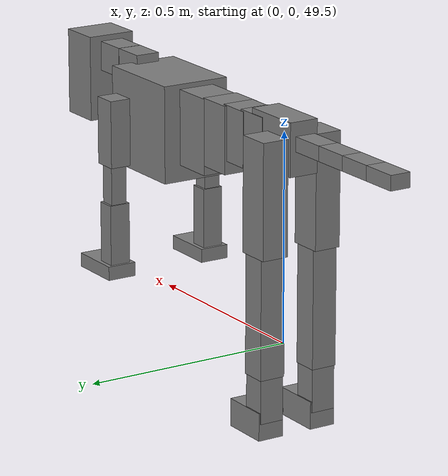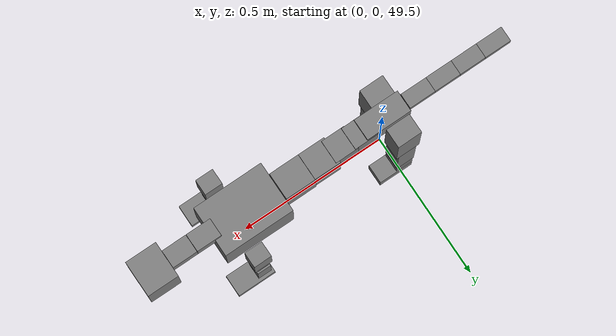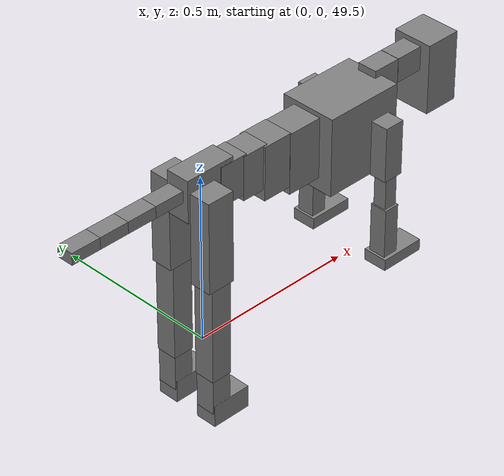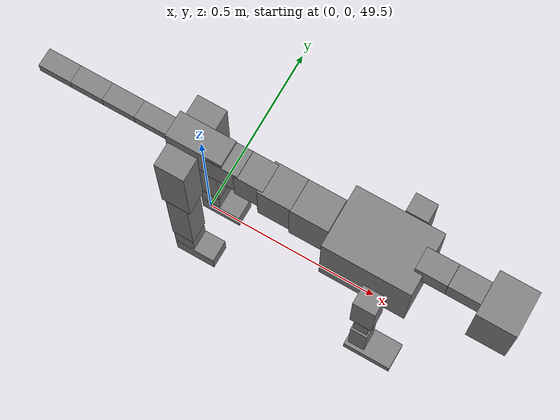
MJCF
<mujoco model="dog">

    <default>
        <joint armature="0.02" stiffness="1" damping="0.2" limited="true"/>
        <geom condim="3" friction="1 0.05 0.05" margin="0.01"/>
        <motor ctrllimited="true" ctrlrange="-1.0 1.0" forcelimited="true" gear="50"/>
    </default>

    <compiler inertiafromgeom="true" angle="radian"/>

    <option timestep="0.016" iterations="50" tolerance="1e-10" solver="Newton" jacobian="dense" cone="pyramidal"/>

    <size nconmax="20000" njmax="60000" nstack="5000000"/>
    <visual>
        <map force="0.1" zfar="30"/>
        <rgba haze="0.15 0.25 0.35 1"/>
        <quality shadowsize="2048"/>
        <global offwidth="800" offheight="800"/>
    </visual>

    <asset>
        <texture type="skybox" builtin="gradient" rgb1="0.3 0.5 0.7" rgb2="0 0 0" width="512" height="512"/>
        <texture name="texplane" type="2d" builtin="checker" rgb1=".2 .3 .4" rgb2=".1 0.15 0.2" width="512" height="512"
                 mark="cross" markrgb=".8 .8 .8"/>
        <texture name="texgeom" type="cube" builtin="flat" mark="cross" width="127" height="1278" rgb1="0.8 0.6 0.4"
                 rgb2="0.8 0.6 0.4" markrgb="1 1 1" random="0.01"/>

        <material name="matplane" reflectance="0.3" texture="texplane" texrepeat="1 1" texuniform="true"/>
        <material name="matgeom" texture="texgeom" texuniform="true" rgba="0.8 0.6 .4 1"/>
    </asset>

    <worldbody>
        <geom name="floor" pos="0 0 0" size="0 0 .25" type="plane" material="matplane" condim="3"/>

        <light directional="false" diffuse=".2 .2 .2" specular="0 0 0" pos="0 0 5" dir="0 0 -1" castshadow="false"/>
        <light mode="targetbodycom" target="torso" directional="false" diffuse=".8 .8 .8" specular="0.3 0.3 0.3"
               pos="0 0 4.0" dir="0 0 -1"/>

        <body name="root" pos="0 0 50">
            <freejoint name="root_1"/>
            <geom type="box" pos="0 0 -0.02" size="0.0774  0.0358  0.063" density="2030"/>

            <body name="spine1" pos="0.054 0 0">
                <joint name="spine1_y" axis="0 1 0" range="0 0.7" limited="true"/>
                <geom type="box" pos="0.02375 0 -0.03" size="0.04375  0.0375  0.05985" density="2030"/>

                <body name="spine2" pos="0.0612 0 0">
                    <joint name="spine2_y" axis="0 1 0" range="-0.15 0.15" limited="true"/>
                    <geom type="box" pos="0.03555  0  -0.04" size="0.04055  0.039  0.06615" density="2030"/>

                    <body name="spine3" pos="0.0730 0 0">
                        <joint name="spine3_y" axis="0 1 0" range="-0.15 0.15" limited="true"/>
                        <geom type="box" pos="0.03555  0  -0.057" size="0.04555  0.0445  0.081" density="2030"/>

                        <body name="spine4" pos="0.0780 0 0">
                            <joint name="spine4_y" axis="0 1 0" range="-0.15 0.15" limited="true"/>
                            <geom type="box" pos="0.05265  0  -0.07" size="0.05265  0.045  0.09135" density="2030"/>

                            <body name="torso" pos="0.1082 0 0">
                                <joint name="torso_y" axis="0 1 0" range="-0.15 0.15" limited="true"/>
                                <geom type="box" pos="0.11925  0  -0.085" size="0.11925  0.085  0.11745"
                                      density="2030"/>

                                <body name="neck1" pos="0.2160  0   0.0180">
                                    <joint name="neck1_y" axis="0 1 0" range="-1.2  -1" limited="true"/>
                                    <geom type="box" pos="0.0423  0  0" size="0.0423  0.03  0.036" density="2325"/>

                                    <body name="neck2" pos="0.0853  0  0">
                                        <joint name="neck2_y" axis="0 1 0" range="0.1  0" limited="true"/>
                                        <geom type="box" pos="0.0423  0  0" size="0.0423  0.03  0.036" density="2325"/>

                                        <body name="head" pos="0.0853  0  0">
                                            <joint name="head_y" axis="0 1 0" range="-0.3  -0.2" limited="true"/>
                                            <geom type="box" pos="0.0531  0  -0.055" size="0.0531  0.06  0.1044"
                                                  density="4030"/>

                                        </body>
                                    </body>
                                </body>

                                <body name="front_shoulder" pos="0.156  0   -0.0480">
                                    <joint name="front_shoulder_y" axis="0 1 0" range="-1 1.5" limited="true"/>
                                    <geom type="box" pos="0 0.13 -0.0550" size="0.0303  0.0259  0.0817" density="1158"/>
                                    <geom type="box" pos="0 -0.13 -0.0550" size="0.0303  0.0259  0.0817"
                                          density="1158"/>

                                    <body name="front_elbow" pos="0  0  -0.1100">
                                        <joint name="front_elbow_y" axis="0 1 0" range="-2 0" limited="true"/>
                                        <geom type="box" pos="0 0.13 -0.0669" size="0.0196  0.0200  0.0669"
                                              density="1081"/>
                                        <geom type="box" pos="0 -0.13 -0.0669" size="0.0196  0.0200  0.0669"
                                              density="1081"/>

                                        <body name="front_wrist" pos="0  0  -0.1338">
                                            <joint name="front_wrist_y" axis="0 1 0" range="-0.2 0" limited="true"/>
                                            <geom type="box" pos="0 0.13 -0.0747" size="0.0232  0.0258  0.0878"
                                                  density="1664"/>
                                            <geom type="box" pos="0 -0.13 -0.0747" size="0.0232  0.0258  0.0878"
                                                  density="1664"/>

                                            <body name="front_finger_end" pos="0  0  -0.1493">
                                                <joint name="front_finger_y" axis="0 1 0" range="-0.4 1"
                                                       limited="true"/>
                                                <geom type="box" pos="0.0363  0.13  -0.0019"
                                                      size="0.0666  0.0363  0.0169" density="1515"/>
                                                <geom type="box" pos="0.0363  -0.13  -0.0019"
                                                      size="0.0666  0.0363  0.0169" density="1515"/>

                                            </body>

                                        </body>
                                    </body>
                                </body>

                            </body>
                        </body>
                    </body>
                </body>
            </body>

            <body name="back_hip" pos="-0.03 0 -0.018">
                <joint name="back_hip_y" axis="0 1 0" range="-1.5 0.3" limited="true"/>
                <geom type="box" pos="0 0.07 -0.1135" size="0.0414  0.0325  0.1363" density="1154"/>
                <geom type="box" pos="0 -0.07 -0.1135" size="0.0414  0.0325  0.1363" density="1154"/>

                <body name="back_knee" pos="0  0  -0.2271">
                    <joint name="back_knee_y" axis="0 1 0" range="0 2.8" limited="true"/>
                    <geom type="box" pos="0 0.07 -0.1463" size="0.0318  0.0313  0.1619" density="1227"/>
                    <geom type="box" pos="0 -0.07 -0.1463" size="0.0318  0.0313  0.1619" density="1227"/>

                    <body name="back_ankle" pos="0  0  -0.2927">
                        <joint name="back_ankle_y" axis="0 1 0" range="-2.2 0" limited="true"/>
                        <geom type="box" pos="0 0.07 -0.0546" size="0.0297  0.0297  0.0658" density="1284"/>
                        <geom type="box" pos="0 -0.07 -0.0546" size="0.0297  0.0297  0.0658" density="1284"/>

                        <body name="back_toe_end" pos="0  0  -0.1092">
                            <joint name="back_toe_y" axis="0 1 0" range="-0.4 1" limited="true"/>
                            <geom type="box" pos="0.0324  0.07  -0.0184" size="0.0594  0.0324  0.0334" density="1515"/>
                            <geom type="box" pos="0.0324  -0.07  -0.0184" size="0.0594  0.0324  0.0334" density="1515"/>

                        </body>
                    </body>
                </body>
            </body>

            <body name="tail1" pos="-0.074 0 -0.006">
                <joint name="tail1_y" axis="0 1 0" range="-0.2 0.2" limited="true"/>
                <geom type="box" pos="-0.0536  0  0" size="0.045  0.025  0.0175" density="1587"/>

                <body name="tail2" pos="-0.09 0 0">
                    <joint name="tail2_y" axis="0 1 0" range="-0.2 0.2" limited="true"/>
                    <geom type="box" pos="-0.0536  0  0" size="0.045  0.025  0.0175" density="1587"/>

                    <body name="tail3" pos="-0.09 0 0">
                        <joint name="tail3_y" axis="0 1 0" range="-0.2 0.2" limited="true"/>
                        <geom type="box" pos="-0.0536  0  0" size="0.045  0.025  0.0175" density="1587"/>

                        <body name="tail4" pos="-0.09 0 0">
                            <joint name="tail4_y" axis="0 1 0" range="-0.2 0.2" limited="true"/>
                            <geom type="box" pos="-0.0536  0  0" size="0.045  0.025  0.0175" density="1587"/>

                        </body>
                    </body>
                </body>
            </body>
        </body>
    </worldbody>

    <actuator>
        <motor joint="spine1_y" forcerange="-150 150     "/>
        <motor joint="spine2_y" forcerange="-150 150     "/>
        <motor joint="spine3_y" forcerange="-150 150     "/>
        <motor joint="spine4_y" forcerange="-150 150     "/>
        <motor joint="torso_y" forcerange="-150 150     "/>
        <motor joint="neck1_y" forcerange="-100 100       "/>
        <motor joint="neck2_y" forcerange="-100 100       "/>
        <motor joint="head_y" forcerange="-150 150       "/>
        <motor joint="front_shoulder_y" forcerange="-159.60 112.94"/>
        <motor joint="front_elbow_y" forcerange="-131.11 114.64"/>
        <motor joint="front_wrist_y" forcerange="-81.45 124.74"/>
        <motor joint="front_finger_y" forcerange="-67.40 86.40"/>
        <motor joint="back_hip_y" forcerange="-273.74 359.72"/>
        <motor joint="back_knee_y" forcerange="-354.99 300.31"/>
        <motor joint="back_angle_y" forcerange="-152.96 222.29"/>
        <motor joint="back_toe_y" forcerange="-111.31 67.90"/>
        <motor joint="tail1_y" forcerange="-50 50     "/>
        <motor joint="tail2_y" forcerange="-50 50     "/>
        <motor joint="tail3_y" forcerange="-50 50     "/>
        <motor joint="tail4_y" forcerange="-50 50     "/>
    </actuator>
</mujoco>
